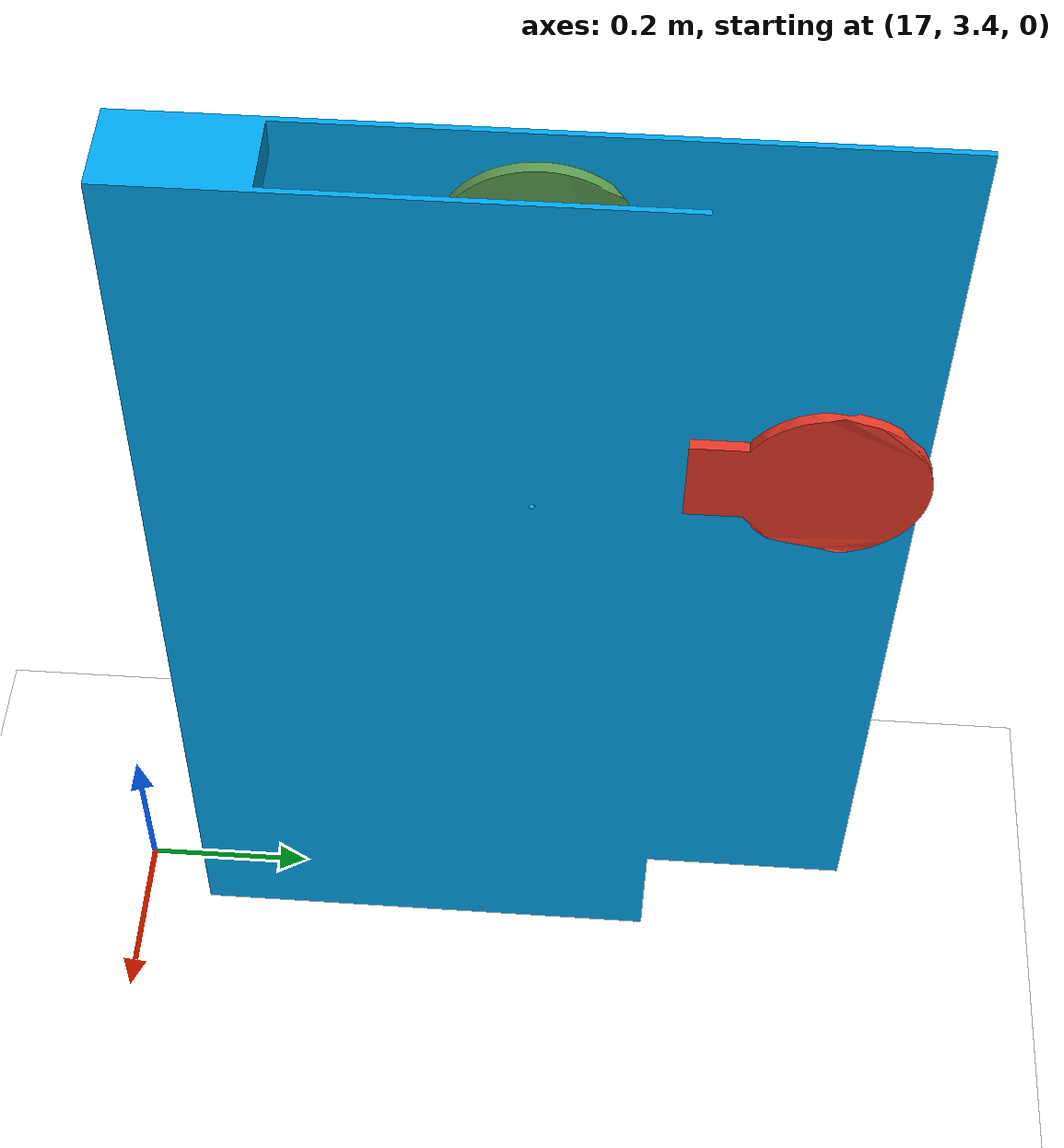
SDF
<sdf version="1.10">
 <world name="cfr_speed_course">
  <model name="ground">
   <static>true</static>
   <pose>20.5 0 0 0 0 0</pose>
   <link name="link">
    <collision name="collision">
     <geometry><plane><normal>0 0 1</normal><size>60 45</size></plane></geometry>
     <surface>
      <friction>
       <ode><mu>1.2</mu></ode>
       <bullet><friction>1</friction><rolling_friction>0.001</rolling_friction></bullet>
      </friction>
     </surface>
    </collision>
    <visual name="visual">
     <geometry><plane><normal>0 0 1</normal><size>60 45</size></plane></geometry>
     <material>
      <diffuse>1 1 1 1</diffuse>
      <pbr>
       <metal>
        <albedo_map>model://cfr_arduino_bridge/materials/asphalt_speed.png</albedo_map>
        <roughness>0.95</roughness>
        <metalness>0</metalness>
       </metal>
      </pbr>
     </material>
    </visual>
   </link>
  </model>
  <model name="start_signal_frame">
   <static>true</static>
   <pose>17.0116 3.8895 0 0 0 1.57080</pose>
   <link name="link">
    <visual name="frame_visual">
     <geometry><mesh><uri>model://cfr_arduino_bridge/meshes/start_signal_frame.stl</uri></mesh></geometry>
     <material><diffuse>0.00 0.64 0.92 1</diffuse></material>
    </visual>
    <collision name="post_collision">
     <pose>0 0 0.61 0 0 0</pose>
     <geometry><box><size>0.813 0.10 1.219</size></box></geometry>
    </collision>
   </link>
  </model>
  <model name="start_signal_arms">
   <pose>17.0116 3.8895 0.8130 0 0 1.57080</pose>
   <link name="pivot">
    <inertial><mass>0.1</mass><inertia><ixx>0.001</ixx><iyy>0.001</iyy><izz>0.001</izz></inertia></inertial>
   </link>
   <link name="arms">
    <gravity>false</gravity>
    <inertial><mass>0.5</mass><inertia><ixx>0.002</ixx><iyy>0.03</iyy><izz>0.03</izz></inertia></inertial>
    <visual name="red_visual">
     <geometry><mesh><uri>model://cfr_arduino_bridge/meshes/start_signal_arm_red.stl</uri></mesh></geometry>
     <material><diffuse>0.89 0.21 0.15 1</diffuse></material>
    </visual>
    <visual name="green_visual">
     <pose>0.0000 0.0000 0.0000 0.0000 1.5708 0.0000</pose>
     <geometry><mesh><uri>model://cfr_arduino_bridge/meshes/start_signal_arm_green.stl</uri></mesh></geometry>
     <material><diffuse>0.35 0.60 0.31 1</diffuse></material>
    </visual>
   </link>
   <joint name="world_joint" type="fixed"><parent>world</parent><child>pivot</child></joint>
   <joint name="arm_joint" type="revolute">
    <parent>pivot</parent>
    <child>arms</child>
    <axis>
     <xyz>0 1 0</xyz>
     <limit><lower>0.00000</lower><upper>1.57080</upper><effort>50</effort><velocity>5</velocity></limit>
    </axis>
   </joint>
   <plugin filename="gz-sim-joint-position-controller-system" name="gz::sim::systems::JointPositionController">
    <joint_name>arm_joint</joint_name>
    <topic>/start_signal/arm</topic>
    <p_gain>12</p_gain>
    <i_gain>0.2</i_gain>
    <d_gain>2.0</d_gain>
   </plugin>
  </model>
 </world>
</sdf>
